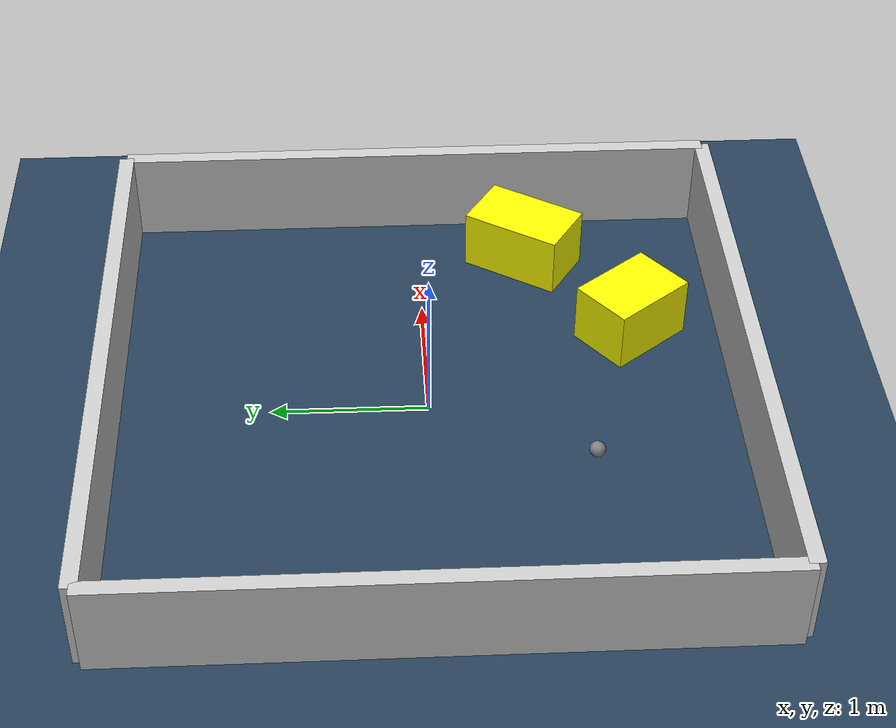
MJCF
<?xml version="1.0" ?>
<mujoco model="generated_environment">
  <option timestep="0.01" integrator="RK4" cone="elliptic"/>
  <default>
    <geom density="1"/>
  </default>
  <asset>
    <texture builtin="gradient" height="3072" rgb1="0.3 0.5 0.7" rgb2="0 0 0" type="skybox" width="512"/>
    <texture builtin="checker" height="300" mark="edge" markrgb="0.8 0.8 0.8" name="groundplane" rgb1="0.2 0.3 0.4" rgb2="0.1 0.2 0.3" type="2d" width="300"/>
    <material name="groundplane" reflectance="0.2" texrepeat="5 5" texture="groundplane" texuniform="true"/>
    <material name="robot" rgba="0.0 1.0 0.0 1"/>
  </asset>
  <worldbody>
    <light dir="0 0 -1" directional="true" pos="0 0 1.5"/>
    <geom condim="4" friction="1.0 0.005 0.001" material="groundplane" name="floor" size="0 0 0.05" type="plane"/>
    <body name="walls">
      <geom name="wall_1" condim="4" pos="-2.0 0.0 0.3" rgba="0.800000011920929 0.800000011920929 0.800000011920929 1.0" size="0.05 2.0 0.3" type="box"/>
      <geom name="wall_2" condim="4" pos="2.0 0.0 0.3" rgba="0.800000011920929 0.800000011920929 0.800000011920929 1.0" size="0.05 2.0 0.3" type="box"/>
      <geom name="wall_3" condim="4" pos="0.0 -2.0 0.3" rgba="0.800000011920929 0.800000011920929 0.800000011920929 1.0" size="2.0 0.05 0.3" type="box"/>
      <geom name="wall_4" condim="4" pos="0.0 2.0 0.3" rgba="0.800000011920929 0.800000011920929 0.800000011920929 1.0" size="2.0 0.05 0.3" type="box"/>
    </body>
    <body name="robot">
      <joint name="joint_x" type="slide" pos="0 0 0" axis="1 0 0"/>
      <joint name="joint_y" type="slide" pos="0 0 0" axis="0 1 0"/>
      <geom name="robot" type="sphere" pos="-0.6397070947185608 -0.9928178424200691 0.2" size="0.05" mass="5." friction="1.0 0.005 0.0001" condim="4"/>
      <site name="sensor_ball"/>
    </body>
    <body name="obstacle_1_movable">
      <geom name="obstacle_1_movable" condim="4" pos="0.6844950368768639 -1.3645346544839374 0.2" euler="0 0 38.14481441088174" friction="1.0 0.005 0.001" rgba="1 1 0 1" size="0.21507650931745817 0.29703639607902266 0.2" type="box" mass="0.1"/>
      <joint type="free"/>
    </body>
    <body name="obstacle_2_movable">
      <geom name="obstacle_2_movable" condim="4" pos="1.4971140877134663 -0.7224720902697385 0.2" euler="0 0 147.5072912183413" friction="1.0 0.005 0.001" rgba="1 1 0 1" size="0.2095486387151777 0.340209651724879 0.2" type="box" mass="0.1"/>
      <joint type="free"/>
    </body>
  </worldbody>
  <actuator>
    <motor name="actuator_x" joint="joint_x" gear="1" ctrlrange="-1 1"/>
    <motor name="actuator_y" joint="joint_y" gear="1" ctrlrange="-1 1"/>
  </actuator>
</mujoco>
